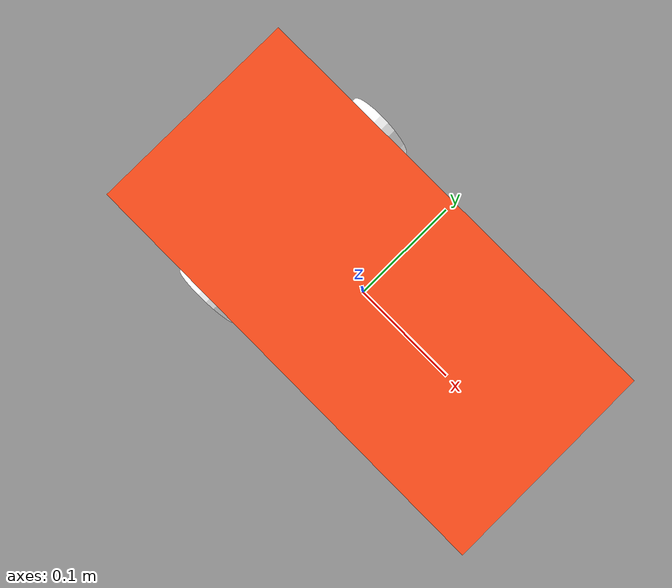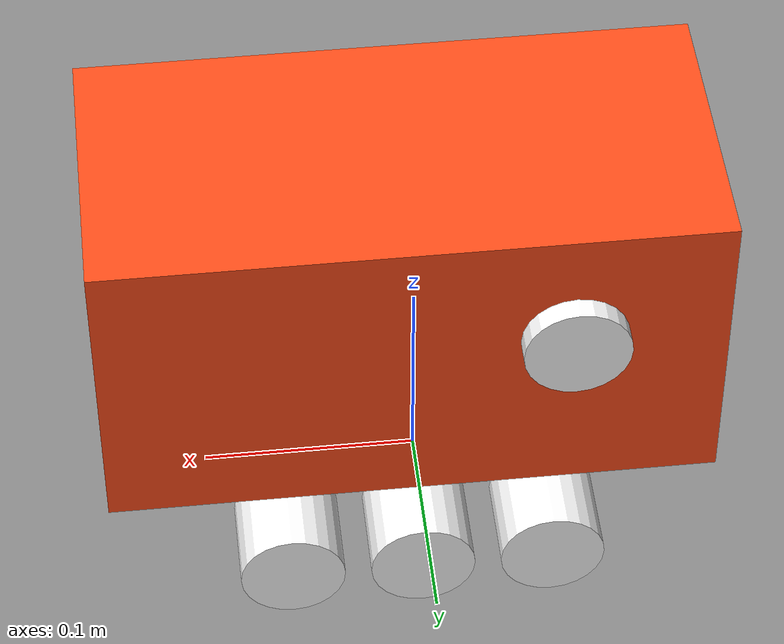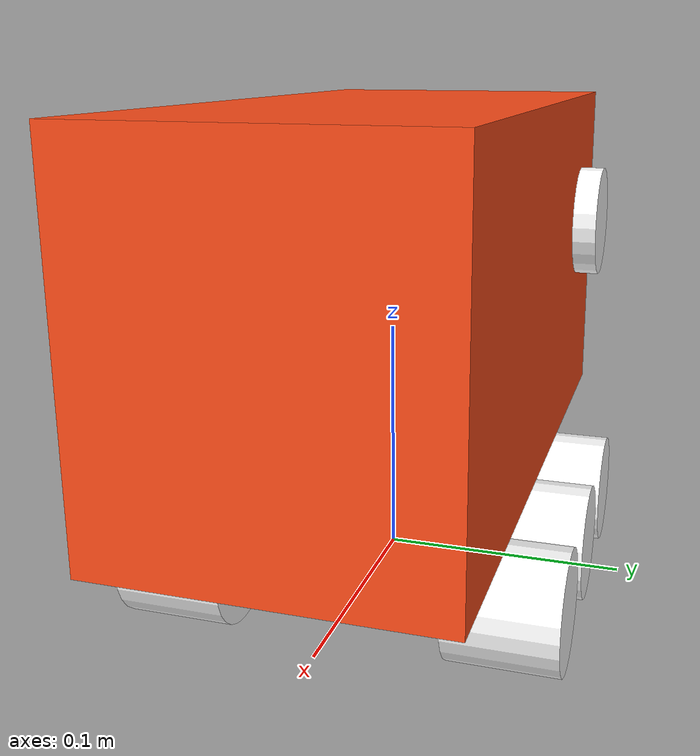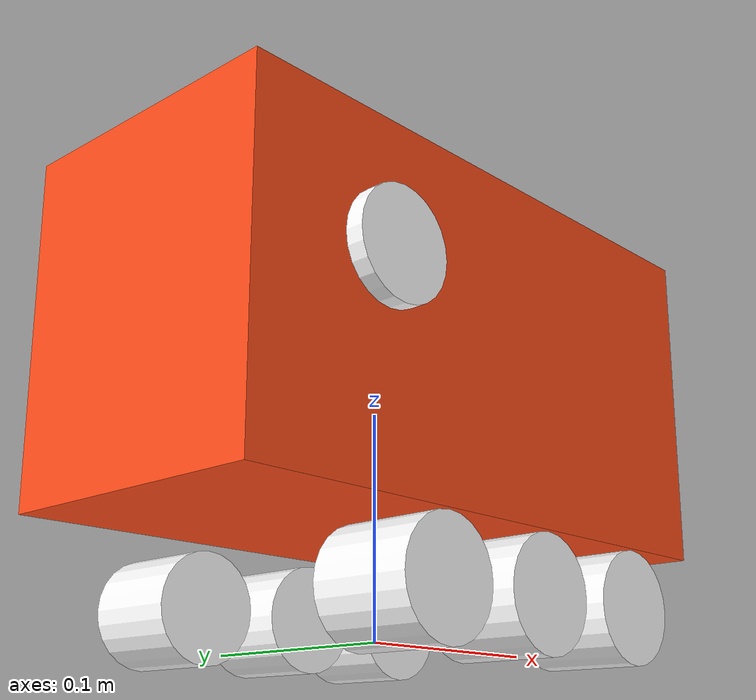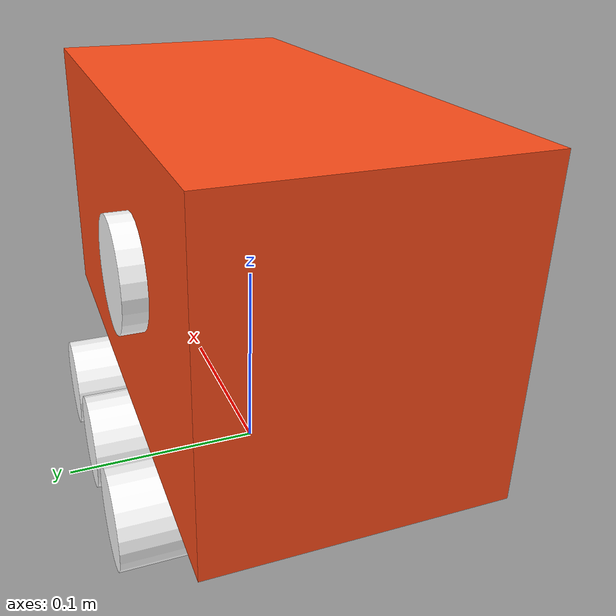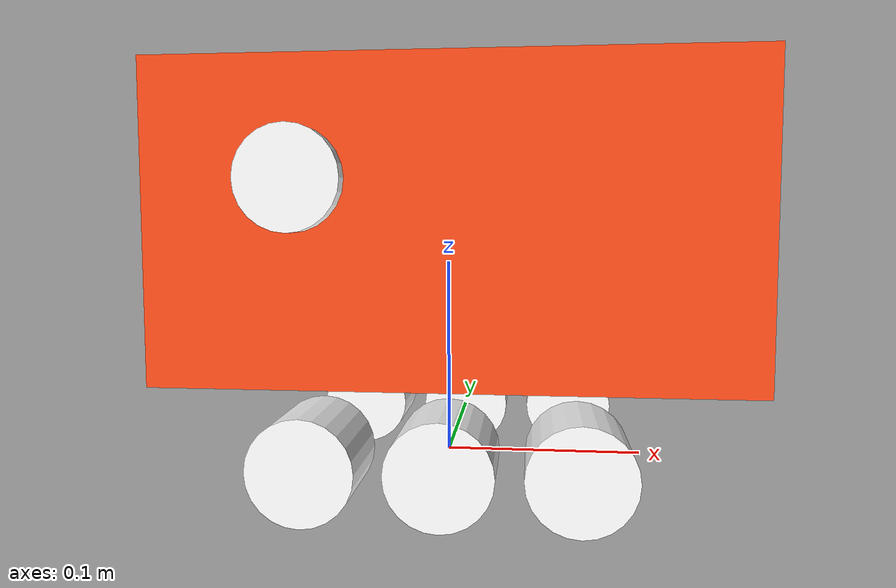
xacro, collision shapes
<?xml version="1.0"?>
<robot xmlns:xacro="http://www.ros.org/wiki/xacro" name="kapibara_robot">

    <xacro:include filename="inertial_macros.xacro"/>

    <material name="white">
        <color rgba="1 1 1 1" />
    </material>

    <material name="orange">
        <color rgba="1 0.3 0.1 1" />
    </material>

    <material name="black">
        <color rgba="0 0 0 1" />
    </material>

    <material name="red">
        <color rgba="1 0 0 1" />
    </material>

    <!-- BASE LINK -->

    <link name="base_link">

    </link>

    <!-- CHASSIS LINK -->

    <joint name="chassis_joint" type="fixed">
        <parent link="base_link" />
        <child link="chassis" />
        <origin xyz="0 0 0" />
    </joint>

    <link name="chassis">
        <visual>
            <origin xyz="0 0 0" />
            <geometry>
                <mesh filename="file://$(find kapibara)/meshes/Bottom.stl" scale="0.001 0.001 0.001" />
            </geometry>
            <material name="black" />
        </visual>

    </link>

    <gazebo reference="chassis">
        <material>Gazebo/Black</material>
    </gazebo>

    <!-- Base -->

    <joint name="base_joint" type="fixed">
        <parent link="chassis" />
        <child link="base" />
        <origin xyz="0.027 0 0.05" />
    </joint>

    <link name="base">
        <visual>
            <origin xyz="0 0 0.05" />
            <geometry>
                <mesh filename="file://$(find kapibara)/meshes/Top.stl" scale="0.001 0.001 0.001" />
            </geometry>
            <material name="orange" />
        </visual>
        <collision name="base_collision">
            <origin xyz="-0.02 0 0.07" />
            <geometry>
                <box size="0.279 0.134 0.15" />
            </geometry>
        </collision>
        <xacro:inertial_box mass="1.15" x="0.279" y="0.134" z="0.15" >
            <origin xyz="-0.02 0 0.07" rpy="0 0 0" />
        </xacro:inertial_box>
    </link>

    <gazebo reference="base">
        <material>Gazebo/Orange</material>

        <sensor type="contact" name="contact_sensor">
            <always_on>true</always_on>
            <update_rate>50</update_rate>
            <contact>
            <collision>base_link_fixed_joint_lump__base_collision_collision</collision>
            </contact>
            <plugin name="bumper_plugin_kapibara" filename="libgazebo_ros_bumper.so">
                <alwaysOn>true</alwaysOn>
                <frameName>base</frameName>
                <ros>
                <remapping>bumper_states:=collision</remapping>
                </ros>
            </plugin>
      </sensor>
    </gazebo>

    <!-- LEFT WHEEL LINK -->

    <joint name="wheel_left1_joint" type="continuous">
        <parent link="chassis" />
        <child link="left_wheel1" />
        <axis xyz="0 0 1"/>

        <origin rpy="${-pi/2} 0 0" xyz="0.005 0.066 0.0135"/>
    </joint>

    <link name="left_wheel1">
        <visual>
            <origin xyz="0 0 0" />
            <geometry>
                <cylinder radius="0.024" length="0.044" />
            </geometry>
            <material name="white" />
        </visual>
        <collision>
            <origin xyz="0 0 0" />
            <geometry>
                <cylinder radius="0.024" length="0.044" />
            </geometry>
        </collision>
        <xacro:inertial_cylinder mass="0.1" radius="0.024" length="0.044">
            <origin xyz="0 0 0" rpy="0 0 0" />
        </xacro:inertial_cylinder>
    </link>

    <gazebo reference="left_wheel1">
        <material>Gazebo/White</material>
        <mu1 value="0.5"/>
        <mu2 value="0.5"/>
    </gazebo>

    <joint name="wheel_left2_joint" type="continuous">
        <parent link="chassis" />
        <child link="left_wheel2" />
        <axis xyz="0 0 1"/>
        <origin rpy="${-pi/2} 0 0" xyz="0.065 0.066 0.0135"/>
    </joint>

    <link name="left_wheel2">
        <visual>
            <origin xyz="0 0 0" />
            <geometry>
                <cylinder radius="0.024" length="0.044" />
            </geometry>
            <material name="white" />
        </visual>
        <collision>
            <origin xyz="0 0 0" />
            <geometry>
                <cylinder radius="0.024" length="0.044" />
            </geometry>
        </collision>
        <xacro:inertial_cylinder mass="0.1" radius="0.024" length="0.044">
            <origin xyz="0 0 0" rpy="0 0 0" />
        </xacro:inertial_cylinder>
    </link>

    <gazebo reference="left_wheel2">
        <material>Gazebo/White</material>
        <mu1 value="0.5"/>
        <mu2 value="0.5"/>
    </gazebo>

    <joint name="wheel_left3_joint" type="continuous">
        <parent link="chassis" />
        <child link="left_wheel3" />
        <axis xyz="0 0 1"/>
        <origin rpy="${-pi/2} 0 0" xyz="-0.055 0.066 0.0135"/>
    </joint>

    <link name="left_wheel3">
        <visual>
            <origin xyz="0 0 0" />
            <geometry>
                <cylinder radius="0.024" length="0.044" />
            </geometry>
            <material name="white" />
        </visual>
        <collision>
            <origin xyz="0 0 0" />
            <geometry>
                <cylinder radius="0.024" length="0.044" />
            </geometry>
        </collision>
        <xacro:inertial_cylinder mass="0.1" radius="0.024" length="0.044">
            <origin xyz="0 0 0" rpy="0 0 0" />
        </xacro:inertial_cylinder>
    </link>

    <gazebo reference="left_wheel3">
        <material>Gazebo/White</material>
        <mu1 value="0.5"/>
        <mu2 value="0.5"/>
    </gazebo>

    <!-- RIGHT WHEEL LINK -->

    <joint name="wheel_right1_joint" type="continuous">
        <parent link="chassis" />
        <child link="right_wheel1" />
        <axis xyz="0 0 1"/>

        <origin rpy="${-pi/2} 0 0" xyz="0.005 -0.066 0.0135"/>
    </joint>

    <link name="right_wheel1">
        <visual>
            <origin xyz="0 0 0" />
            <geometry>
                <cylinder radius="0.024" length="0.044" />
            </geometry>
            <material name="white" />
        </visual>
        <collision>
            <origin xyz="0 0 0" />
            <geometry>
                <cylinder radius="0.024" length="0.044" />
            </geometry>
        </collision>
        <xacro:inertial_cylinder mass="0.1" radius="0.024" length="0.044">
            <origin xyz="0 0 0" rpy="0 0 0" />
        </xacro:inertial_cylinder>
    </link>

    <gazebo reference="right_wheel1">
        <material>Gazebo/White</material>
        <mu1 value="0.5"/>
        <mu2 value="0.5"/>
    </gazebo>

    <joint name="wheel_right2_joint" type="continuous">
        <parent link="chassis" />
        <child link="right_wheel2" />
        <axis xyz="0 0 1"/>
        <origin rpy="${-pi/2} 0 0" xyz="0.065 -0.066 0.0135"/>
    </joint>

    <link name="right_wheel2">
        <visual>
            <origin xyz="0 0 0" />
            <geometry>
                <cylinder radius="0.024" length="0.044" />
            </geometry>
            <material name="white" />
        </visual>
        <collision>
            <origin xyz="0 0 0" />
            <geometry>
                <cylinder radius="0.024" length="0.044" />
            </geometry>
        </collision>
        <xacro:inertial_cylinder mass="0.1" radius="0.024" length="0.044">
            <origin xyz="0 0 0" rpy="0 0 0" />
        </xacro:inertial_cylinder>
    </link>

    <gazebo reference="right_wheel2">
        <material>Gazebo/White</material>
        <mu1 value="0.5"/>
        <mu2 value="0.5"/>
    </gazebo>

    <joint name="wheel_right3_joint" type="continuous">
        <parent link="chassis" />
        <child link="right_wheel3" />
        <axis xyz="0 0 1"/>
        <origin rpy="${-pi/2} 0 0" xyz="-0.055 -0.066 0.0135"/>
    </joint>

    <link name="right_wheel3">
        <visual>
            <origin xyz="0 0 0" />
            <geometry>
                <cylinder radius="0.024" length="0.044" />
            </geometry>
            <material name="white" />
        </visual>
        <collision>
            <origin xyz="0 0 0" />
            <geometry>
                <cylinder radius="0.024" length="0.044" />
            </geometry>
        </collision>
        <xacro:inertial_cylinder mass="0.1" radius="0.024" length="0.044">
            <origin xyz="0 0 0" rpy="0 0 0" />
        </xacro:inertial_cylinder>
    </link>

    <gazebo reference="right_wheel3">
        <material>Gazebo/White</material>
        <mu1 value="0.5"/>
        <mu2 value="0.5"/>
    </gazebo>

    <!-- EARS -->

    <joint name="left_ear_joint" type="revolute">
        <parent link="base" />
        <child link="left_ear" />
        <axis xyz="0 -1 0"/>
        <origin rpy="0 ${pi/2} 0" xyz="-0.09 0.075 0.09" />
        <limit effort="1" velocity="1" upper="${pi}" lower="0" />
    </joint>

    <link name="left_ear">
        <visual>
            <origin xyz="0 0 0" />
            <geometry>
                <mesh filename="package://kapibara/meshes/Wing1.stl" scale="0.001 0.001 0.001" />
            </geometry>
            <material name="white" />
        </visual>
        <collision>
            <origin xyz="0 0 0" rpy="${pi/2} 0 0"/>
            <geometry>
                <cylinder radius="0.024" length="0.01" />
            </geometry>
        </collision>
        <xacro:inertial_cylinder mass="0.1" radius="0.024" length="0.01">
            <origin xyz="0 0 0" rpy="${pi/2} 0 0" />
        </xacro:inertial_cylinder>
    </link>

     <joint name="right_ear_joint" type="revolute">
        <parent link="base" />
        <child link="righ_ear" />
        <axis xyz="0 -1 0"/>
        <origin rpy="0 ${pi/2} 0" xyz="-0.09 -0.070 0.09" />
        <limit effort="1" velocity="1" upper="${pi}" lower="0" />
    </joint>

    <link name="righ_ear">
        <visual>
            <origin xyz="0 0 0" />
            <geometry>
                <mesh filename="package://kapibara/meshes/Wing2.stl" scale="0.001 0.001 0.001" />
            </geometry>
            <material name="white" />
        </visual>
        <collision>
            <origin xyz="0 0 0" rpy="${pi/2} 0 0" />
            <geometry>
                <cylinder radius="0.024" length="0.01" />
            </geometry>
        </collision>
        <xacro:inertial_cylinder mass="0.1" radius="0.024" length="0.01">
            <origin xyz="0 0 0" rpy="${pi/2} 0 0" />
        </xacro:inertial_cylinder>
    </link>

</robot>
